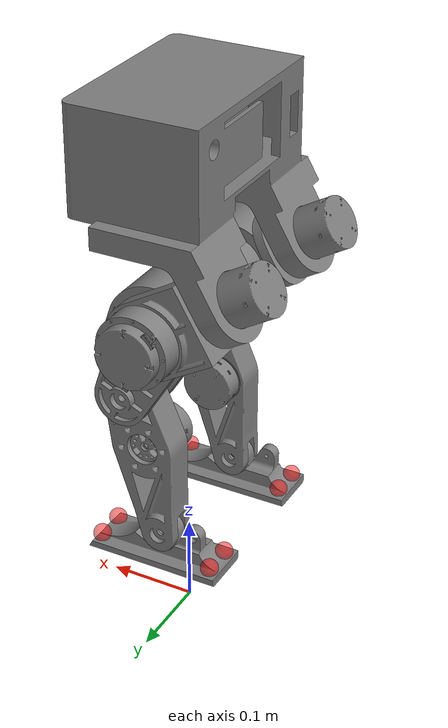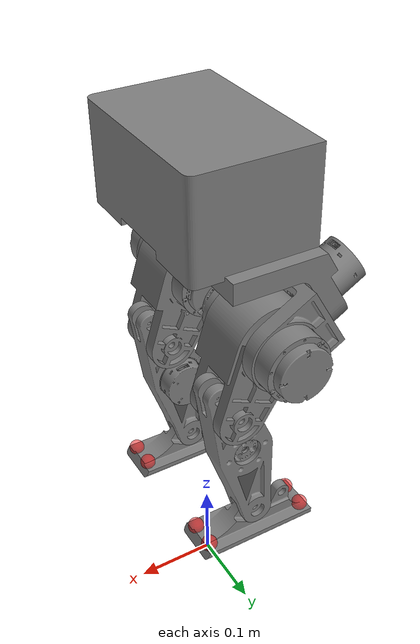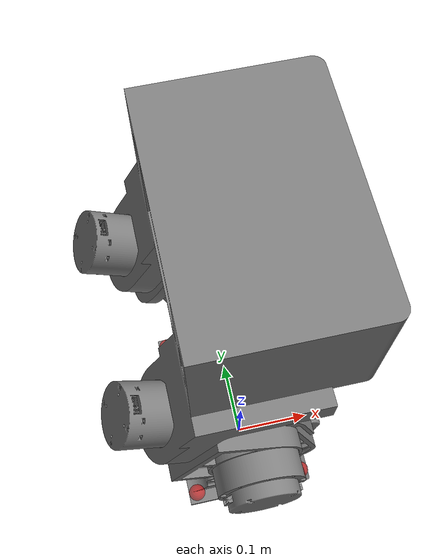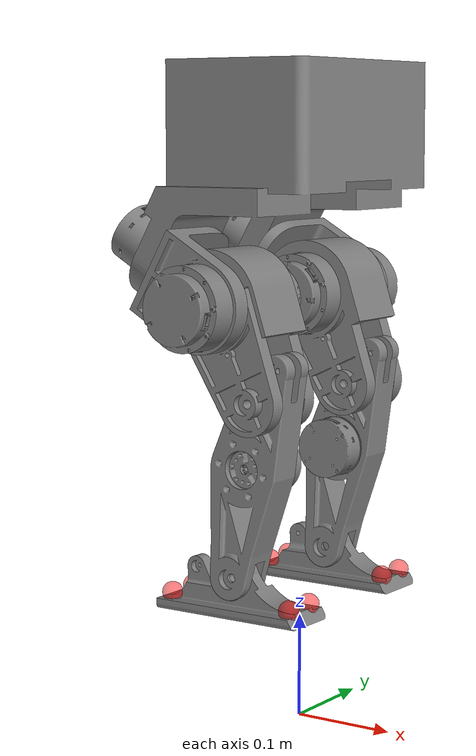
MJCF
<mujoco model="mybipedal_v4">
  <compiler angle='radian' eulerseq="XYZ" meshdir="../meshes"
    autolimits="true" />

  <option timestep="0.001" />

  <visual>
    <global azimuth="150" elevation="-20" />
    <headlight ambient="0.3 0.3 0.3" diffuse="0.6 0.6 0.6" specular="0 0 0" />
    <scale forcewidth="0.03" contactwidth="0.01" contactheight="0.02" com="1" framelength="0.6"
      framewidth="0.05" />
    <rgba haze="0.15 0.25 0.35 1" com="0.502 1 0 0.5" contactpoint="1 1 0.6 0.4"
      contactforce="0.98 0.4 0.4 1" />
  </visual>
  <default>
      <geom contype = "0" conaffinity = "0" solref = "0.005 1" condim = "3" friction = "1 1" />
      <equality solref = "0.005 1" />
      <default class = "zhiyuan">
      </default>
      <default class = "collision">
          <geom contype = "1" group = "3" type = "capsule" />
          <default class = "collision-left">
              <geom contype = "2" conaffinity = "4" />
          </default>
          <default class = "collision-right">
              <geom contype = "4" conaffinity = "2" />
          </default>
      </default>
    </default>

  <asset>
    <mesh name="base_link" file="base_link.stl" scale="0.001 0.001 0.001"/>
    <mesh name="hip_roll_right_link_1" file="hip_roll_right_link_1.stl" scale="0.001 0.001 0.001"/>
    <mesh name="hip_roll_left_link_1" file="hip_roll_left_link_1.stl" scale="0.001 0.001 0.001"/>
    <mesh name="hip_pitch_right_link_1" file="hip_pitch_right_link_1.stl" scale="0.001 0.001 0.001"/>
    <mesh name="knee_right_link_1" file="knee_right_link_1.stl" scale="0.001 0.001 0.001"/>
    <mesh name="feet_right_link_1" file="feet_right_link_1.stl" scale="0.001 0.001 0.001"/>
    <mesh name="hip_pitch_left_link_1" file="hip_pitch_left_link_1.stl" scale="0.001 0.001 0.001"/>
    <mesh name="knee_left_link_1" file="knee_left_link_1.stl" scale="0.001 0.001 0.001"/>
    <mesh name="feet_left_link_1" file="feet_left_link_1.stl" scale="0.001 0.001 0.001"/>
    <mesh name="RT00_v1__3__1" file="RT00_v1__3__1.stl" scale="0.001 0.001 0.001"/>
    <mesh name="RT00_v1__2__1" file="RT00_v1__2__1.stl" scale="0.001 0.001 0.001"/>
    <mesh name="RS02_v1__1__1" file="RS02_v1__1__1.stl" scale="0.001 0.001 0.001"/>
    <mesh name="RS02_v1_1" file="RS02_v1_1.stl" scale="0.001 0.001 0.001"/>
    <mesh name="RT00_v1__1__1" file="RT00_v1__1__1.stl" scale="0.001 0.001 0.001"/>
    <mesh name="RT00_v1_1" file="RT00_v1_1.stl" scale="0.001 0.001 0.001"/>
    <mesh name="batteryPack_1" file="batteryPack_1.stl" scale="0.001 0.001 0.001"/>
    <mesh name="RS02_v1__3__1" file="RS02_v1__3__1.stl" scale="0.001 0.001 0.001"/>
    <mesh name="RS02_v1__2__1" file="RS02_v1__2__1.stl" scale="0.001 0.001 0.001"/>
  </asset>

  <worldbody>
    <body name="base_link" pos="0 0 0.6">
      <inertial pos="-0.0110299 0.00020768 -0.0602687" quat="0.656642 0.655867 0.264494 -0.26211" mass="0.856205" diaginertia="0.00855945 0.00669559 0.00462196"/>
      <freejoint name="floating_base"/>
      <geom type="mesh" contype="0" conaffinity="0" group="1" density="0" mesh="base_link"/>
      <geom type="mesh" rgba="1 0.4 0.4 1" mesh="base_link" class="collision"/>
      <site name = "imu" size = "0.01" pos = "0.001 0 0" />

      <body name="hip_roll_left_link_1" pos="-0.079952 0.083 -0.160122">
        <inertial pos="0.0234792 0.018613 -0.0135553" quat="0.131119 0.473949 0.688546 0.532997" mass="0.0666854" diaginertia="0.000131149 0.000113651 6.62004e-05"/>
        <joint name="left_hip_roll_joint" type='hinge' pos="0 0 0" axis="-0.866025 0 0.5" damping='1' armature="0.1" range="-0.81 0.22" actuatorfrcrange="-14 14"/>
        <geom pos="0.079952 -0.083 0.160122" quat="1 0 0 0" type="mesh" contype="0" conaffinity="0" group="1" density="0" mesh="hip_roll_left_link_1"/>
        <geom pos="0.079952 -0.083 0.160122" quat="1 0 0 0" type="mesh" mesh="hip_roll_left_link_1" rgba="1 1 0.4 1"/>
        <body name="hip_pitch_left_link_1" pos="0.054993 0.031 -0.03175">
          <inertial pos="0.0125517 -0.0304827 -0.0225734" quat="0.701463 -0.165617 -0.141083 0.678687" mass="0.12802" diaginertia="0.000386371 0.000376345 0.000167284"/>
          <joint name="left_hip_pitch_joint" type='hinge' pos="0 0 0" axis="0 -1 0" damping='1' armature="0.1" range="-1.57 1.24" actuatorfrcrange="-17 17"/>
          <geom pos="0.024959 -0.114 0.191872" quat="1 0 0 0" type="mesh" contype="0" conaffinity="0" group="1" density="0" mesh="hip_pitch_left_link_1"/>
          <geom pos="0.024959 -0.114 0.191872" quat="1 0 0 0" type="mesh" mesh="hip_pitch_left_link_1" rgba="0 0.5 1 1"/>
          <body name="knee_left_link_1" pos="0.040571 -0.015 -0.087005">
            <inertial pos="-0.0117138 -0.0169493 -0.0672482" quat="0.702201 0.0831503 0.0831503 0.702201" mass="0.0961872" diaginertia="0.000414 0.000388735 4.52647e-05"/>
            <joint name="left_knee_joint" type='hinge' pos="0 0 0" axis="0 -1 0" damping='1' armature="0.1" range="-1.17 0.3" actuatorfrcrange="-17 17"/>
            <geom pos="-0.015612 -0.099 0.278877" quat="1 0 0 0" type="mesh" contype="0" conaffinity="0" group="1" density="0" mesh="knee_left_link_1"/>
            <geom pos="-0.015612 -0.099 0.278877" quat="1 0 0 0" type="mesh" mesh="knee_left_link_1" rgba="0.4 1 0.4 1"/>
            <body name="feet_left_link_1" pos="-0.031881 -0.01 -0.168826">
              <inertial pos="-0.00136027 -0.00691159 -0.0225652" quat="0 0.720547 0 0.693406" mass="0.0567994" diaginertia="9.61152e-05 9.3e-05 1.78848e-05"/>
              <joint name="left_ankle_joint" type='hinge' pos="0 0 0" axis="0 -1 0" damping='1' armature="0.1" range="-0.57 0.85" actuatorfrcrange="-14 14"/>
              <geom pos="0.016269 -0.089 0.447703" quat="1 0 0 0" type="mesh" contype="0" conaffinity="0" group="1" density="0" mesh="feet_left_link_1"/>
              <geom pos="0.016269 -0.089 0.447703" quat="1 0 0 0" type="mesh" mesh="feet_left_link_1" rgba="0.8 1.0 0.8 1"/>
              <geom type = "sphere" size = "0.015" pos = "0.069 0.01 -0.02" class = "collision"  />
              <geom type = "sphere" size = "0.015" pos = "0.069 -0.023 -0.02" class = "collision"  />
              <geom type = "sphere" size = "0.015" pos = "-0.063 0.01 -0.02" class = "collision"  />
              <geom type = "sphere" size = "0.015" pos = "-0.063 -0.023 -0.02" class = "collision"  />
              <geom type = "sphere" size = "0.01" pos = "0.069 0.01 -0.02" rgba = "255 0 0 0.5"  />
              <geom type = "sphere" size = "0.01" pos = "0.069 -0.023 -0.02" rgba = "255 0 0 0.5"  />
              <geom type = "sphere" size = "0.01" pos = "-0.063 0.01 -0.02" rgba = "255 0 0 0.5"  />
              <geom type = "sphere" size = "0.01" pos = "-0.063 -0.023 -0.02" rgba = "255 0 0 0.5"  />
            </body>
            <body name="RT00_v1_1" pos="-0.015731 -0.0065 -0.064007">
              <inertial pos="0.000345816 -0.0222804 -7.4374e-05" quat="0.5 0.5 -0.5 0.5" mass="0.325391" diaginertia="0.000192 0.000189 0.000176"/>
              <geom pos="0.000119 -0.0925 0.342884" quat="1 0 0 0" type="mesh" contype="0" conaffinity="0" group="1" density="0" mesh="RT00_v1_1"/>
              <geom pos="0.000119 -0.0925 0.342884" quat="1 0 0 0" type="mesh" mesh="RT00_v1_1"/>
            </body>
          </body>
          <body name="RS02_v1_1" pos="0 -0.062 0">
            <inertial pos="0.000714323 -0.0190126 0.00109074" quat="0.634494 0.303427 0.306163 0.641571" mass="0.365186" diaginertia="0.000338011 0.000252654 0.000238335"/>
            <geom pos="0.024959 -0.052 0.191872" quat="1 0 0 0" type="mesh" contype="0" conaffinity="0" group="1" density="0" mesh="RS02_v1_1"/>
            <geom pos="0.024959 -0.052 0.191872" quat="1 0 0 0" type="mesh" mesh="RS02_v1_1"/>
          </body>
        </body>
        <body name="RS02_v1__3__1" pos="0.054993 0.046 -0.03175">
          <inertial pos="0.000616559 0.0190126 -0.00114842" quat="0.283581 0.651911 0.644669 0.281062" mass="0.365186" diaginertia="0.000338011 0.000252512 0.000238477"/>
          <geom pos="0.024959 -0.129 0.191872" quat="1 0 0 0" type="mesh" contype="0" conaffinity="0" group="1" density="0" mesh="RS02_v1__3__1"/>
          <geom pos="0.024959 -0.129 0.191872" quat="1 0 0 0" type="mesh" mesh="RS02_v1__3__1"/>
        </body>
      </body>
      <body name="hip_roll_right_link_1" pos="-0.079952 -0.083 -0.160122">
        <inertial pos="0.0234791 -0.018613 -0.0135553" quat="0.532997 0.688546 0.473949 0.131119" mass="0.0666853" diaginertia="0.000131149 0.000113651 6.62004e-05"/>
        <joint name="right_hip_roll_joint" type='hinge' pos="0 0 0" axis="-0.866025 0 0.5" damping='1' armature="0.1" range="-0.22 0.81" actuatorfrcrange="-14 14"/>
        <geom pos="0.079952 0.083 0.160122" quat="1 0 0 0" type="mesh" contype="0" conaffinity="0" group="1" density="0" mesh="hip_roll_right_link_1"/>
        <geom pos="0.079952 0.083 0.160122" quat="1 0 0 0" type="mesh" mesh="hip_roll_right_link_1" rgba="1 1 0.4 1"/>
        <body name="hip_pitch_right_link_1" pos="0.054993 -0.031 -0.03175">
          <inertial pos="0.0127994 0.0307163 -0.0230654" quat="0.649645 -0.150004 -0.155989 0.728785" mass="0.126875" diaginertia="0.00038635 0.000376054 0.000166596"/>
          <joint name="right_hip_pitch_joint" type='hinge' pos="0 0 0" axis="0 -1 0" damping='1' armature="0.1" range="-1.57 1.24" actuatorfrcrange="-17 17"/>
          <geom pos="0.024959 0.114 0.191872" quat="1 0 0 0" type="mesh" contype="0" conaffinity="0" group="1" density="0" mesh="hip_pitch_right_link_1"/>
          <geom pos="0.024959 0.114 0.191872" quat="1 0 0 0" type="mesh" mesh="hip_pitch_right_link_1" rgba="0 0.5 1 1"/>
          <body name="knee_right_link_1" pos="0.040571 0.015 -0.087005">
            <inertial pos="-0.0117137 0.0169493 -0.067248" quat="0.702201 0.0831503 0.0831503 0.702201" mass="0.0961875" diaginertia="0.000414 0.000388735 4.52647e-05"/>
            <joint name="right_knee_joint" type='hinge' pos="0 0 0" axis="0 -1 0" damping='1' armature="0.1" range="-1.17 0.3" actuatorfrcrange="-17 17"/>
            <geom pos="-0.015612 0.099 0.278877" quat="1 0 0 0" type="mesh" contype="0" conaffinity="0" group="1" density="0" mesh="knee_right_link_1"/>
            <geom pos="-0.015612 0.099 0.278877" quat="1 0 0 0" type="mesh" mesh="knee_right_link_1" rgba="0.4 1 0.4 1"/>
            <body name="feet_right_link_1" pos="-0.031881 0.01 -0.168826">
              <inertial pos="-0.00136027 0.00691158 -0.0225652" quat="0 0.720547 0 0.693406" mass="0.0567994" diaginertia="9.61152e-05 9.3e-05 1.78848e-05"/>
              <joint name="right_ankle_joint" type='hinge' pos="0 0 0" axis="0 -1 0" damping='1' armature="0.1" range="-0.57 0.85" actuatorfrcrange="-14 14"/>
              <geom pos="0.016269 0.089 0.447703" quat="1 0 0 0" type="mesh" contype="0" conaffinity="0" group="1" density="0" mesh="feet_right_link_1"/>
              <geom pos="0.016269 0.089 0.447703" quat="1 0 0 0" type="mesh" mesh="feet_right_link_1" rgba="0.8 1.0 0.8 1" />
              <geom type = "sphere" size = "0.015" pos = "0.069 0.023 -0.02" class = "collision"  />
              <geom type = "sphere" size = "0.015" pos = "0.069 -0.01 -0.02" class = "collision"  />
              <geom type = "sphere" size = "0.015" pos = "-0.063 0.023 -0.02" class = "collision"  />
              <geom type = "sphere" size = "0.015" pos = "-0.063 -0.01 -0.02" class = "collision"  />
              <geom type = "sphere" size = "0.01" pos = "0.069 0.023 -0.02" rgba = "255 0 0 0.5"  />
              <geom type = "sphere" size = "0.01" pos = "0.069 -0.01 -0.02" rgba = "255 0 0 0.5"  />
              <geom type = "sphere" size = "0.01" pos = "-0.063 0.023 -0.02" rgba = "255 0 0 0.5"  />
              <geom type = "sphere" size = "0.01" pos = "-0.063 -0.01 -0.02" rgba = "255 0 0 0.5"  />
            </body>
            <body name="RT00_v1__1__1" pos="-0.015731 0.0065 -0.064007">
              <inertial pos="-0.000350568 0.0222804 4.84174e-05" quat="0.567843 0.567843 -0.421372 0.421372" mass="0.325391" diaginertia="0.000192303 0.000188697 0.000176"/>
              <geom pos="0.000119 0.0925 0.342884" quat="1 0 0 0" type="mesh" contype="0" conaffinity="0" group="1" density="0" mesh="RT00_v1__1__1"/>
              <geom pos="0.000119 0.0925 0.342884" quat="1 0 0 0" type="mesh" mesh="RT00_v1__1__1"/>
            </body>
          </body>
          <body name="RS02_v1__1__1" pos="0 0.062 0">
            <inertial pos="0.0012945 0.0190126 -0.000153445" quat="0.551354 0.448204 0.437663 0.550975" mass="0.365186" diaginertia="0.000338021 0.000252652 0.000238327"/>
            <geom pos="0.024959 0.052 0.191872" quat="1 0 0 0" type="mesh" contype="0" conaffinity="0" group="1" density="0" mesh="RS02_v1__1__1"/>
            <geom pos="0.024959 0.052 0.191872" quat="1 0 0 0" type="mesh" mesh="RS02_v1__1__1"/>
          </body>
        </body>
        <body name="RS02_v1__2__1" pos="0.054993 -0.046 -0.03175">
          <inertial pos="0.00130296 -0.0190126 4.04714e-05" quat="0.415956 0.567545 0.568376 0.426406" mass="0.365186" diaginertia="0.000338021 0.000253206 0.000238773"/>
          <geom pos="0.024959 0.129 0.191872" quat="1 0 0 0" type="mesh" contype="0" conaffinity="0" group="1" density="0" mesh="RS02_v1__2__1"/>
          <geom pos="0.024959 0.129 0.191872" quat="1 0 0 0" type="mesh" mesh="RS02_v1__2__1"/>
        </body>
      </body>
      <body name="RT00_v1__3__1" pos="-0.090777 -0.083 -0.153872">
        <inertial pos="-0.0193021 -0.000353565 0.0111291" quat="0 0.866581 0 0.499036" mass="0.325391" diaginertia="0.000192062 0.000189 0.000175938"/>
        <geom pos="0.090777 0.083 0.153872" quat="1 0 0 0" type="mesh" contype="0" conaffinity="0" group="1" density="0" mesh="RT00_v1__3__1"/>
        <geom pos="0.090777 0.083 0.153872" quat="1 0 0 0" type="mesh" mesh="RT00_v1__3__1"/>
      </body>
      <body name="RT00_v1__2__1" pos="-0.090777 0.083 -0.153872">
        <inertial pos="-0.0193021 -0.000353565 0.0111291" quat="0 0.866581 0 0.499036" mass="0.325391" diaginertia="0.000192062 0.000189 0.000175938"/>
        <geom pos="0.090777 -0.083 0.153872" quat="1 0 0 0" type="mesh" contype="0" conaffinity="0" group="1" density="0" mesh="RT00_v1__2__1"/>
        <geom pos="0.090777 -0.083 0.153872" quat="1 0 0 0" type="mesh" mesh="RT00_v1__2__1"/>
      </body>
      <body name="batteryPack_1" pos="-0.009 0 -0.065">
        <inertial pos="0.0105614 -1.9471e-05 -0.0308043" quat="0 0.719548 0 0.694443" mass="0.550064" diaginertia="0.000894604 0.000802 0.000415396"/>
        <geom pos="0.009 0 0.065" quat="1 0 0 0" type="mesh" contype="0" conaffinity="0" group="1" density="0" mesh="batteryPack_1"/>
        <geom pos="0.009 0 0.065" quat="1 0 0 0" type="mesh" mesh="batteryPack_1"/>
      </body>
    </body>
  </worldbody>

  <actuator>
    <motor name='motor_left_hip_roll_joint'   joint='left_hip_roll_joint'   gear="1" ctrlrange='-100 100'/>
    <motor name='motor_left_hip_pitch_joint'  joint='left_hip_pitch_joint'  gear="1" ctrlrange='-100 100'/>
    <motor name='motor_left_knee_joint'       joint='left_knee_joint'       gear="1" ctrlrange='-100 100'/>
    <motor name='motor_left_ankle_joint'      joint='left_ankle_joint'      gear="1" ctrlrange='-100 100'/>
    <motor name='motor_right_hip_roll_joint'  joint='right_hip_roll_joint'  gear="1" ctrlrange='-100 100'/>
    <motor name='motor_right_hip_pitch_joint' joint='right_hip_pitch_joint' gear="1" ctrlrange='-100 100'/>
    <motor name='motor_right_knee_joint'      joint='right_knee_joint'      gear="1" ctrlrange='-100 100'/>
    <motor name='motor_right_ankle_joint'     joint='right_ankle_joint'     gear="1" ctrlrange='-100 100'/>
  </actuator>

    <sensor>
    <!-- imu sensor -->
    <framequat name="body-orientation" objtype="site" objname="imu" noise="0"/>
    <gyro name="body-angular-velocity" site="imu" noise="0.001"/>
    <framepos name="body-linear-pos" objtype="site" objname="imu"/>
    <velocimeter name="body-linear-vel" site="imu"/>
    <accelerometer name="body-linear-acceleration" site="imu" noise="0.001"/>

    <jointpos name = 'jointpos_left_hip_roll_joint' joint = 'left_hip_roll_joint' noise = "0" />
    <jointpos name = 'jointpos_left_hip_pitch_joint' joint = 'left_hip_pitch_joint' noise = "0" />
    <jointpos name = 'jointpos_left_knee_joint' joint = 'left_knee_joint' noise = "0" />
    <jointpos name = 'jointpos_left_ankle_joint' joint = 'left_ankle_joint' noise = "0" />

    <jointpos name = 'jointpos_right_hip_roll_joint' joint = 'right_hip_roll_joint' noise = "0" />
    <jointpos name = 'jointpos_right_hip_pitch_joint' joint = 'right_hip_pitch_joint' noise = "0" />
    <jointpos name = 'jointpos_right_knee_joint' joint = 'right_knee_joint' noise = "0" />
    <jointpos name = 'jointpos_right_ankle_joint' joint = 'right_ankle_joint' noise = "0" />

    <jointvel name = 'jointvel_left_hip_roll_joint' joint = 'left_hip_roll_joint' noise = "0" />
    <jointvel name = 'jointvel_left_hip_pitch_joint' joint = 'left_hip_pitch_joint' noise = "0" />
    <jointvel name = 'jointvel_left_knee_joint' joint = 'left_knee_joint' noise = "0" />
    <jointvel name = 'jointvel_left_ankle_joint' joint = 'left_ankle_joint' noise = "0" />

    <jointvel name = 'jointvel_right_hip_roll_joint' joint = 'right_hip_roll_joint' noise = "0" />
    <jointvel name = 'jointvel_right_hip_pitch_joint' joint = 'right_hip_pitch_joint' noise = "0" />
    <jointvel name = 'jointvel_right_knee_joint' joint = 'right_knee_joint' noise = "0" />
    <jointvel name = 'jointvel_right_ankle_joint' joint = 'right_ankle_joint' noise = "0" />

  </sensor>

  <keyframe>
    <key name = "home_default" qpos = "0 0 1.2 1 0 0 0 0. 0. 0. 0. 0. 0. 0. 0."/>
  </keyframe>

</mujoco>
